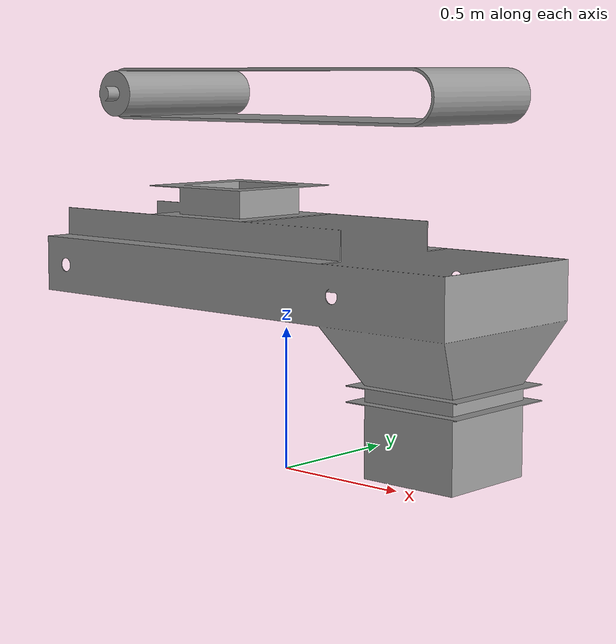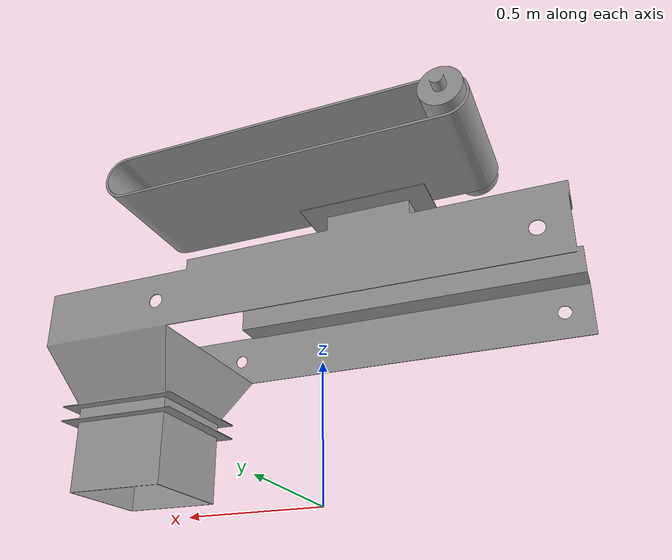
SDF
<?xml version='1.0'?>
<sdf version='1.7'>
  <model name='feeder_rubble'>
    <link name='body'>
      <inertial>
        <mass>1</mass>
        <inertia>
          <ixx>0.166667</ixx>
          <ixy>0</ixy>
          <ixz>0</ixz>
          <iyy>0.166667</iyy>
          <iyz>0</iyz>
          <izz>0.166667</izz>
        </inertia>
        <pose>0 0 0 0 -0 0</pose>
      </inertial>
      <pose>0 0 0 0 -0 0</pose>
      <gravity>1</gravity>
      <self_collide>0</self_collide>
      <kinematic>1</kinematic>
      <enable_wind>0</enable_wind>
      <visual name='visual'>
        <pose>0 0 0 0 -0 0</pose>
        <geometry>
          <mesh>
            <uri>model://feeder_rubble/meshes/body.stl</uri>
            <scale>1 1 1</scale>
          </mesh>
        </geometry>
        <material>
          <lighting>1</lighting>
          <script>
            <uri>file://media/materials/scripts/gazebo.material</uri>
            <name>Gazebo/Grey</name>
          </script>
          <shader type='pixel'>
            <normal_map>__default__</normal_map>
          </shader>
          <ambient>0.3 0.3 0.3 1</ambient>
          <diffuse>0.7 0.7 0.7 1</diffuse>
          <specular>0.01 0.01 0.01 1</specular>
          <emissive>0 0 0 1</emissive>
        </material>
        <transparency>0</transparency>
        <cast_shadows>1</cast_shadows>
      </visual>
      <collision name='collision'>
        <laser_retro>0</laser_retro>
        <max_contacts>10</max_contacts>
        <pose>0 0 0 0 -0 0</pose>
        <geometry>
          <mesh>
            <uri>model://feeder_rubble/meshes/body.stl</uri>
            <scale>1 1 1</scale>
          </mesh>
        </geometry>
        <surface>
          <friction>
            <ode>
              <mu>1</mu>
              <mu2>1</mu2>
              <fdir1>0 0 0</fdir1>
              <slip1>0</slip1>
              <slip2>0</slip2>
            </ode>
            <torsional>
              <coefficient>1</coefficient>
              <patch_radius>0</patch_radius>
              <surface_radius>0</surface_radius>
              <use_patch_radius>1</use_patch_radius>
              <ode>
                <slip>0</slip>
              </ode>
            </torsional>
          </friction>
          <bounce>
            <restitution_coefficient>0</restitution_coefficient>
            <threshold>1e+06</threshold>
          </bounce>
          <contact>
            <collide_without_contact>0</collide_without_contact>
            <collide_without_contact_bitmask>1</collide_without_contact_bitmask>
            <collide_bitmask>1</collide_bitmask>
            <ode>
              <soft_cfm>0</soft_cfm>
              <soft_erp>0.2</soft_erp>
              <kp>1e+13</kp>
              <kd>1</kd>
              <max_vel>0.01</max_vel>
              <min_depth>0</min_depth>
            </ode>
            <bullet>
              <split_impulse>1</split_impulse>
              <split_impulse_penetration_threshold>-0.01</split_impulse_penetration_threshold>
              <soft_cfm>0</soft_cfm>
              <soft_erp>0.2</soft_erp>
              <kp>1e+13</kp>
              <kd>1</kd>
            </bullet>
          </contact>
        </surface>
      </collision>
    </link>
    <link name='belt'>
      <inertial>
        <mass>1</mass>
        <inertia>
          <ixx>0.166667</ixx>
          <ixy>0</ixy>
          <ixz>0</ixz>
          <iyy>0.166667</iyy>
          <iyz>0</iyz>
          <izz>0.166667</izz>
        </inertia>
        <pose>0 0 0 0 -0 0</pose>
      </inertial>
      <pose>0 0 0 0 -0 0</pose>
      <gravity>1</gravity>
      <self_collide>0</self_collide>
      <kinematic>1</kinematic>
      <enable_wind>0</enable_wind>
      <visual name='visual'>
        <pose>0 0 0 0 -0 0</pose>
        <geometry>
          <mesh>
            <uri>model://feeder_rubble/meshes/belt.stl</uri>
            <scale>1 1 1</scale>
          </mesh>
        </geometry>
        <material>
          <lighting>1</lighting>
          <script>
            <uri>file://media/materials/scripts/gazebo.material</uri>
            <name>Gazebo/Grey</name>
          </script>
          <shader type='pixel'>
            <normal_map>__default__</normal_map>
          </shader>
          <ambient>0.3 0.3 0.3 1</ambient>
          <diffuse>0.7 0.7 0.7 1</diffuse>
          <specular>0.01 0.01 0.01 1</specular>
          <emissive>0 0 0 1</emissive>
        </material>
        <transparency>0</transparency>
        <cast_shadows>1</cast_shadows>
      </visual>
      <collision name='collision'>
        <laser_retro>0</laser_retro>
        <max_contacts>10</max_contacts>
        <pose>0 0 0 0 -0 0</pose>
        <geometry>
          <mesh>
            <uri>model://feeder_rubble/meshes/belt.stl</uri>
            <scale>1 1 1</scale>
          </mesh>
        </geometry>
        <surface>
          <friction>
            <ode>
              <mu>1</mu>
              <mu2>1</mu2>
              <fdir1>0 0 0</fdir1>
              <slip1>0</slip1>
              <slip2>0</slip2>
            </ode>
            <torsional>
              <coefficient>1</coefficient>
              <patch_radius>0</patch_radius>
              <surface_radius>0</surface_radius>
              <use_patch_radius>1</use_patch_radius>
              <ode>
                <slip>0</slip>
              </ode>
            </torsional>
          </friction>
          <bounce>
            <restitution_coefficient>0</restitution_coefficient>
            <threshold>1e+06</threshold>
          </bounce>
          <contact>
            <collide_without_contact>0</collide_without_contact>
            <collide_without_contact_bitmask>1</collide_without_contact_bitmask>
            <collide_bitmask>1</collide_bitmask>
            <ode>
              <soft_cfm>0</soft_cfm>
              <soft_erp>0.2</soft_erp>
              <kp>1e+13</kp>
              <kd>1</kd>
              <max_vel>0.01</max_vel>
              <min_depth>0</min_depth>
            </ode>
            <bullet>
              <split_impulse>1</split_impulse>
              <split_impulse_penetration_threshold>-0.01</split_impulse_penetration_threshold>
              <soft_cfm>0</soft_cfm>
              <soft_erp>0.2</soft_erp>
              <kp>1e+13</kp>
              <kd>1</kd>
            </bullet>
          </contact>
        </surface>
      </collision>
    </link>
    <link name='roller_1'>
      <inertial>
        <mass>1</mass>
        <inertia>
          <ixx>0.166667</ixx>
          <ixy>0</ixy>
          <ixz>0</ixz>
          <iyy>0.166667</iyy>
          <iyz>0</iyz>
          <izz>0.166667</izz>
        </inertia>
        <pose>0 0 0 0 -0 0</pose>
      </inertial>
      <pose>0 0 0 0 -0 0</pose>
      <gravity>1</gravity>
      <self_collide>0</self_collide>
      <kinematic>1</kinematic>
      <enable_wind>0</enable_wind>
      <visual name='visual'>
        <pose>0 0 0 0 -0 0</pose>
        <geometry>
          <mesh>
            <uri>model://feeder_rubble/meshes/roller_1.stl</uri>
            <scale>1 1 1</scale>
          </mesh>
        </geometry>
        <material>
          <lighting>1</lighting>
          <script>
            <uri>file://media/materials/scripts/gazebo.material</uri>
            <name>Gazebo/Grey</name>
          </script>
          <shader type='pixel'>
            <normal_map>__default__</normal_map>
          </shader>
          <ambient>0.3 0.3 0.3 1</ambient>
          <diffuse>0.7 0.7 0.7 1</diffuse>
          <specular>0.01 0.01 0.01 1</specular>
          <emissive>0 0 0 1</emissive>
        </material>
        <transparency>0</transparency>
        <cast_shadows>1</cast_shadows>
      </visual>
      <collision name='collision'>
        <laser_retro>0</laser_retro>
        <max_contacts>10</max_contacts>
        <pose>0 0 0 0 -0 0</pose>
        <geometry>
          <mesh>
            <uri>model://feeder_rubble/meshes/roller_1.stl</uri>
            <scale>1 1 1</scale>
          </mesh>
        </geometry>
        <surface>
          <friction>
            <ode>
              <mu>1</mu>
              <mu2>1</mu2>
              <fdir1>0 0 0</fdir1>
              <slip1>0</slip1>
              <slip2>0</slip2>
            </ode>
            <torsional>
              <coefficient>1</coefficient>
              <patch_radius>0</patch_radius>
              <surface_radius>0</surface_radius>
              <use_patch_radius>1</use_patch_radius>
              <ode>
                <slip>0</slip>
              </ode>
            </torsional>
          </friction>
          <bounce>
            <restitution_coefficient>0</restitution_coefficient>
            <threshold>1e+06</threshold>
          </bounce>
          <contact>
            <collide_without_contact>0</collide_without_contact>
            <collide_without_contact_bitmask>1</collide_without_contact_bitmask>
            <collide_bitmask>1</collide_bitmask>
            <ode>
              <soft_cfm>0</soft_cfm>
              <soft_erp>0.2</soft_erp>
              <kp>1e+13</kp>
              <kd>1</kd>
              <max_vel>0.01</max_vel>
              <min_depth>0</min_depth>
            </ode>
            <bullet>
              <split_impulse>1</split_impulse>
              <split_impulse_penetration_threshold>-0.01</split_impulse_penetration_threshold>
              <soft_cfm>0</soft_cfm>
              <soft_erp>0.2</soft_erp>
              <kp>1e+13</kp>
              <kd>1</kd>
            </bullet>
          </contact>
        </surface>
      </collision>
    </link>
    <link name='roller_2'>
      <inertial>
        <mass>1</mass>
        <inertia>
          <ixx>0.166667</ixx>
          <ixy>0</ixy>
          <ixz>0</ixz>
          <iyy>0.166667</iyy>
          <iyz>0</iyz>
          <izz>0.166667</izz>
        </inertia>
        <pose>0 0 0 0 -0 0</pose>
      </inertial>
      <pose>0 0 0 0 -0 0</pose>
      <gravity>1</gravity>
      <self_collide>0</self_collide>
      <kinematic>1</kinematic>
      <enable_wind>0</enable_wind>
      <visual name='visual'>
        <pose>0 0 0 0 -0 0</pose>
        <geometry>
          <mesh>
            <uri>model://feeder_rubble/meshes/roller_2.stl</uri>
            <scale>1 1 1</scale>
          </mesh>
        </geometry>
        <material>
          <lighting>1</lighting>
          <script>
            <uri>file://media/materials/scripts/gazebo.material</uri>
            <name>Gazebo/Grey</name>
          </script>
          <shader type='pixel'>
            <normal_map>__default__</normal_map>
          </shader>
          <ambient>0.3 0.3 0.3 1</ambient>
          <diffuse>0.7 0.7 0.7 1</diffuse>
          <specular>0.01 0.01 0.01 1</specular>
          <emissive>0 0 0 1</emissive>
        </material>
        <transparency>0</transparency>
        <cast_shadows>1</cast_shadows>
      </visual>
      <collision name='collision'>
        <laser_retro>0</laser_retro>
        <max_contacts>10</max_contacts>
        <pose>0 0 0 0 -0 0</pose>
        <geometry>
          <mesh>
            <uri>model://feeder_rubble/meshes/roller_2.stl</uri>
            <scale>1 1 1</scale>
          </mesh>
        </geometry>
        <surface>
          <friction>
            <ode>
              <mu>1</mu>
              <mu2>1</mu2>
              <fdir1>0 0 0</fdir1>
              <slip1>0</slip1>
              <slip2>0</slip2>
            </ode>
            <torsional>
              <coefficient>1</coefficient>
              <patch_radius>0</patch_radius>
              <surface_radius>0</surface_radius>
              <use_patch_radius>1</use_patch_radius>
              <ode>
                <slip>0</slip>
              </ode>
            </torsional>
          </friction>
          <bounce>
            <restitution_coefficient>0</restitution_coefficient>
            <threshold>1e+06</threshold>
          </bounce>
          <contact>
            <collide_without_contact>0</collide_without_contact>
            <collide_without_contact_bitmask>1</collide_without_contact_bitmask>
            <collide_bitmask>1</collide_bitmask>
            <ode>
              <soft_cfm>0</soft_cfm>
              <soft_erp>0.2</soft_erp>
              <kp>1e+13</kp>
              <kd>1</kd>
              <max_vel>0.01</max_vel>
              <min_depth>0</min_depth>
            </ode>
            <bullet>
              <split_impulse>1</split_impulse>
              <split_impulse_penetration_threshold>-0.01</split_impulse_penetration_threshold>
              <soft_cfm>0</soft_cfm>
              <soft_erp>0.2</soft_erp>
              <kp>1e+13</kp>
              <kd>1</kd>
            </bullet>
          </contact>
        </surface>
      </collision>
    </link>
    <static>0</static>
    <allow_auto_disable>1</allow_auto_disable>
  </model>
</sdf>
